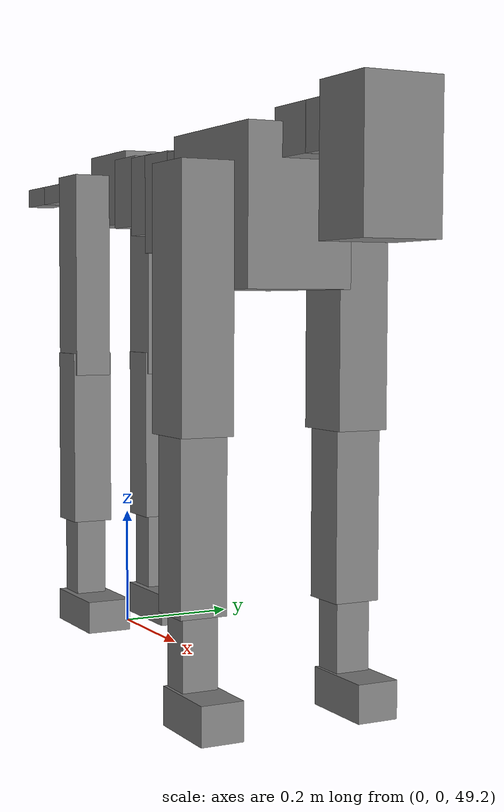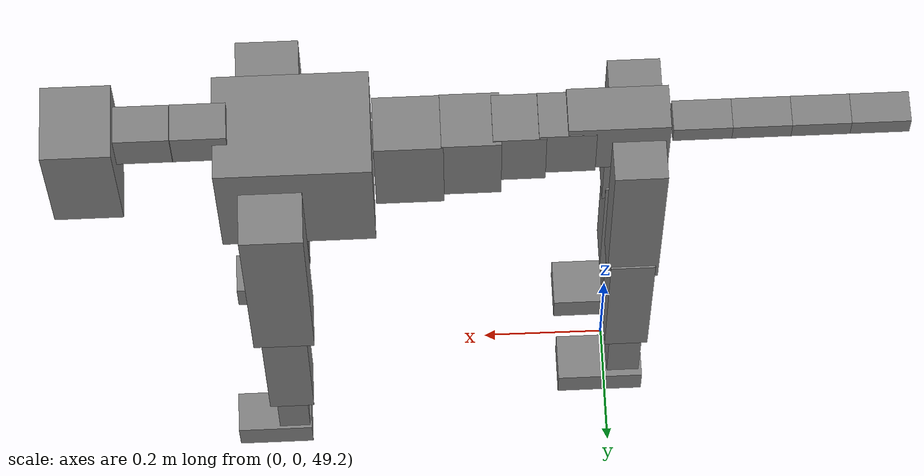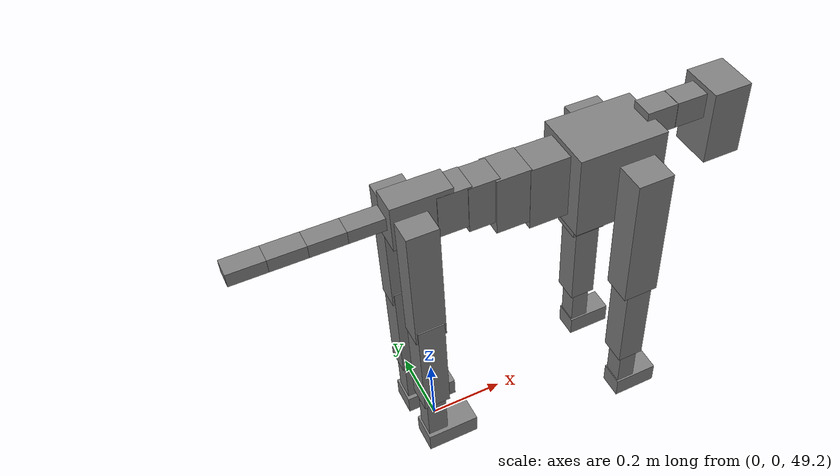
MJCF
<mujoco model="dog">

    <default>
        <joint armature="0.02" stiffness="1" damping="0.2" limited="true" />
        <geom condim="3" friction="1 0.05 0.05" margin="0.01" />
        <motor ctrllimited="true" ctrlrange="-1.0 1.0" forcelimited="true" gear="50" />
    </default>

    <compiler inertiafromgeom="true" angle="radian" />

    <option timestep="0.016" iterations="50" tolerance="1e-10" solver="Newton" jacobian="dense" cone="pyramidal" />

    <size nconmax="20000" njmax="60000" nstack="5000000" />
    <visual>
        <map force="0.1" zfar="30" />
        <rgba haze="0.15 0.25 0.35 1" />
        <quality shadowsize="2048" />
        <global offwidth="800" offheight="800" />
    </visual>

    <asset>
        <texture type="skybox" builtin="gradient" rgb1="0.3 0.5 0.7" rgb2="0 0 0" width="512" height="512" />
        <texture name="texplane" type="2d" builtin="checker" rgb1=".2 .3 .4" rgb2=".1 0.15 0.2" width="512" height="512" mark="cross" markrgb=".8 .8 .8" />
        <texture name="texgeom" type="cube" builtin="flat" mark="cross" width="127" height="1278" rgb1="0.8 0.6 0.4" rgb2="0.8 0.6 0.4" markrgb="1 1 1" random="0.01" />

        <material name="matplane" reflectance="0.3" texture="texplane" texrepeat="1 1" texuniform="true" />
        <material name="matgeom" texture="texgeom" texuniform="true" rgba="0.8 0.6 .4 1" />
    </asset>

    <worldbody>
        <geom name="floor" pos="0 0 0" size="0 0 .25" type="plane" material="matplane" condim="3" />

        <light directional="false" diffuse=".2 .2 .2" specular="0 0 0" pos="0 0 5" dir="0 0 -1" castshadow="false" />
        <light mode="targetbodycom" target="torso" directional="false" diffuse=".8 .8 .8" specular="0.3 0.3 0.3" pos="0 0 4.0" dir="0 0 -1" />

        <body name="root" pos="0 0 50">
            <freejoint name="root_1" />
            <geom type="box" pos="0 0 -0.02" size="0.0774  0.0358  0.063" density="2030" />

            <body name="spine1" pos="0.054 0 0">
                <joint name="spine1_y" axis="0 1 0" range="0 0.7" limited="true" />
                <geom type="box" pos="0.02375 0 -0.03" size="0.04375  0.0375  0.05985" density="2030" />

                <body name="spine2" pos="0.0612 0 0">
                    <joint name="spine2_y" axis="0 1 0" range="-0.15 0.15" limited="true" />
                    <geom type="box" pos="0.03555  0  -0.04" size="0.04055  0.039  0.06615" density="2030" />

                    <body name="spine3" pos="0.0730 0 0">
                        <joint name="spine3_y" axis="0 1 0" range="-0.15 0.15" limited="true" />
                        <geom type="box" pos="0.03555  0  -0.057" size="0.04555  0.0445  0.081" density="2030" />

                        <body name="spine4" pos="0.0780 0 0">
                            <joint name="spine4_y" axis="0 1 0" range="-0.15 0.15" limited="true" />
                            <geom type="box" pos="0.05265  0  -0.07" size="0.05265  0.045  0.09135" density="2030" />

                            <body name="torso" pos="0.1082 0 0">
                                <joint name="torso_y" axis="0 1 0" range="-0.15 0.15" limited="true" />
                                <geom type="box" pos="0.11925  0  -0.085" size="0.11925  0.085  0.11745" density="2030" />

                                <body name="neck1" pos="0.2160  0   0.0180">
                                    <joint name="neck1_y" axis="0 1 0" range="-1.2  -1" limited="true" />
                                    <geom type="box" pos="0.0423  0  0" size="0.0423  0.03  0.036" density="2325" />

                                    <body name="neck2" pos="0.0853  0  0">
                                        <joint name="neck2_y" axis="0 1 0" range="0.1  0" limited="true" />
                                        <geom type="box" pos="0.0423  0  0" size="0.0423  0.03  0.036" density="2325" />

                                        <body name="head" pos="0.0853  0  0">
                                            <joint name="head_y" axis="0 1 0" range="-0.3  -0.2" limited="true" />
                                            <geom type="box" pos="0.0531  0  -0.055" size="0.0531  0.06  0.1044" density="4030" />

                                        </body>
                                    </body>
                                </body>

                                <body name="front_shoulder" pos="0.156  0   -0.0480">
                                    <joint name="front_shoulder_y" axis="0 1 0" range="-1 1.5" limited="true" />
                                    <geom type="box" pos="0 0.13 -0.1691" size="0.0486  0.0416  0.1957" density="1158" />
                                    <geom type="box" pos="0 -0.13 -0.1691" size="0.0486  0.0416  0.1957" density="1158" />

                                    <body name="front_elbow" pos="0  0  -0.3381">
                                        <joint name="front_elbow_y" axis="0 1 0" range="-2 0" limited="true" />
                                        <geom type="box" pos="0 0.13 -0.1443" size="0.0365  0.0373  0.1443" density="1081" />
                                        <geom type="box" pos="0 -0.13 -0.1443" size="0.0365  0.0373  0.1443" density="1081" />

                                        <body name="front_wrist" pos="0  0  -0.2887">
                                            <joint name="front_wrist_y" axis="0 1 0" range="-0.2 0" limited="true" />
                                            <geom type="box" pos="0 0.13 -0.0623" size="0.0256  0.0285  0.0754" density="1664" />
                                            <geom type="box" pos="0 -0.13 -0.0623" size="0.0256  0.0285  0.0754" density="1664" />

                                            <body name="front_finger_end" pos="0  0  -0.1245">
                                                <joint name="front_finger_y" axis="0 1 0" range="-0.4 1" limited="true" />
                                                <geom type="box" pos="0.0338  0.13  -0.0147" size="0.0620  0.0338  0.0297" density="1515" />
                                                <geom type="box" pos="0.0338  -0.13  -0.0147" size="0.0620  0.0338  0.0297" density="1515" />

                                            </body>

                                        </body>
                                    </body>
                                </body>

                            </body>
                        </body>
                    </body>
                </body>
            </body>

            <body name="back_hip" pos="-0.03 0 -0.018">
                <joint name="back_hip_y" axis="0 1 0" range="-1.5 0.3" limited="true" />
                <geom type="box" pos="0 0.07 -0.1542" size="0.0405  0.0318  0.1770" density="1154" />
                <geom type="box" pos="0 -0.07 -0.1542" size="0.0405  0.0318  0.1770" density="1154" />

                <body name="back_knee" pos="0  0  -0.3084">
                    <joint name="back_knee_y" axis="0 1 0" range="0 2.8" limited="true" />
                    <geom type="box" pos="0 0.07 -0.1353" size="0.0355  0.0350  0.1509" density="1227" />
                    <geom type="box" pos="0 -0.07 -0.1353" size="0.0355  0.0350  0.1509" density="1227" />

                    <body name="back_ankle" pos="0  0  -0.2706">
                        <joint name="back_ankle_y" axis="0 1 0" range="-2.2 0" limited="true" />
                        <geom type="box" pos="0 0.07 -0.0810" size="0.0270  0.0270  0.0923" density="1284" />
                        <geom type="box" pos="0 -0.07 -0.0810" size="0.0270  0.0270  0.0923" density="1284" />

                        <body name="back_toe_end" pos="0  0  -0.1621">
                            <joint name="back_toe_y" axis="0 1 0" range="-0.4 1" limited="true" />
                            <geom type="box" pos="0.0386  0.07  -0.0125" size="0.0709  0.0386  0.0275" density="1515" />
                            <geom type="box" pos="0.0386  -0.07  -0.0125" size="0.0709  0.0386  0.0275" density="1515" />

                        </body>
                    </body>
                </body>
            </body>

            <body name="tail1" pos="-0.074 0 -0.006">
                <joint name="tail1_y" axis="0 1 0" range="-0.2 0.2" limited="true" />
                <geom type="box" pos="-0.0536  0  0" size="0.045  0.025  0.0175" density="1587" />

                <body name="tail2" pos="-0.09 0 0">
                    <joint name="tail2_y" axis="0 1 0" range="-0.2 0.2" limited="true" />
                    <geom type="box" pos="-0.0536  0  0" size="0.045  0.025  0.0175" density="1587" />

                    <body name="tail3" pos="-0.09 0 0">
                        <joint name="tail3_y" axis="0 1 0" range="-0.2 0.2" limited="true" />
                        <geom type="box" pos="-0.0536  0  0" size="0.045  0.025  0.0175" density="1587" />

                        <body name="tail4" pos="-0.09 0 0">
                            <joint name="tail4_y" axis="0 1 0" range="-0.2 0.2" limited="true" />
                            <geom type="box" pos="-0.0536  0  0" size="0.045  0.025  0.0175" density="1587" />

                        </body>
                    </body>
                </body>
            </body>
        </body>
    </worldbody>

    <actuator>
        <motor joint="spine1_y" forcerange="-150 150     " />
        <motor joint="spine2_y" forcerange="-150 150     " />
        <motor joint="spine3_y" forcerange="-150 150     " />
        <motor joint="spine4_y" forcerange="-150 150     " />
        <motor joint="torso_y" forcerange="-150 150     " />
        <motor joint="neck1_y" forcerange="-100 100       " />
        <motor joint="neck2_y" forcerange="-100 100       " />
        <motor joint="head_y" forcerange="-150 150       " />
        <motor joint="front_shoulder_y" forcerange="-193.03 184.16" />
        <motor joint="front_elbow_y" forcerange="-186.35 184.78" />
        <motor joint="front_wrist_y" forcerange="-113.52 114.18" />
        <motor joint="front_finger_y" forcerange="-65.26 75.20" />
        <motor joint="back_hip_y" forcerange="-305.54 318.12" />
        <motor joint="back_knee_y" forcerange="-330.16 378.85" />
        <motor joint="back_angle_y" forcerange="-176.21 155.68" />
        <motor joint="back_toe_y" forcerange="-107.37 121.82" />
        <motor joint="tail1_y" forcerange="-50 50     " />
        <motor joint="tail2_y" forcerange="-50 50     " />
        <motor joint="tail3_y" forcerange="-50 50     " />
        <motor joint="tail4_y" forcerange="-50 50     " />
    </actuator>
</mujoco>
